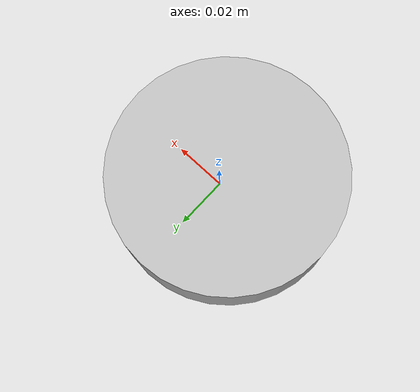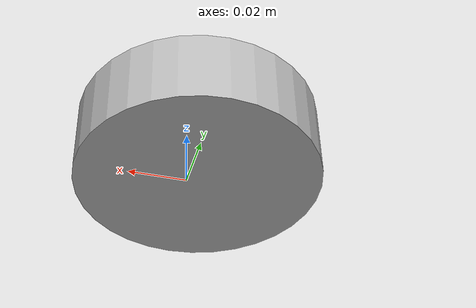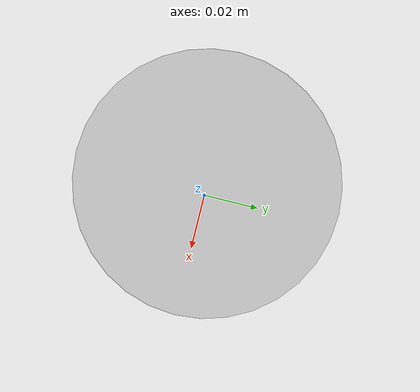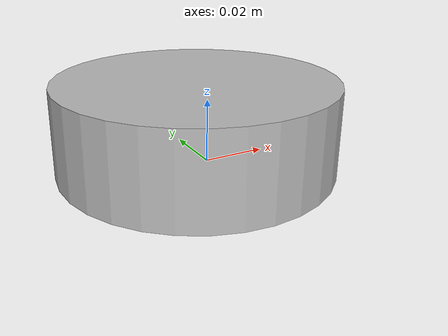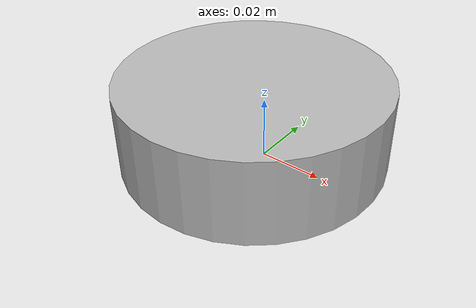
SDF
<?xml version='1.0'?>
<sdf version="1.9">
  <model name="green_can">
    <pose>0 0 0.0135 0 0 0</pose>
    <static>false</static>
    <link name="link">
      <inertial>
        <mass>5.0</mass>
        <inertia> <!-- inertias are tricky to compute -->
          <!-- http://gazebosim.org/tutorials?tut=inertia&cat=build_robot -->
          <ixx>0.1</ixx>       <!-- for a box: ixx = 0.083 * mass * (y*y + z*z) -->
          <ixy>0.0</ixy>         <!-- for a box: ixy = 0 -->
          <ixz>0.0</ixz>         <!-- for a box: ixz = 0 -->
          <iyy>0.1</iyy>       <!-- for a box: iyy = 0.083 * mass * (x*x + z*z) -->
          <iyz>0.0</iyz>         <!-- for a box: iyz = 0 -->
          <izz>0.1</izz>       <!-- for a box: izz = 0.083 * mass * (x*x + y*y) -->
        </inertia>
      </inertial>
      <collision name="collision">
        <geometry>
          <cylinder>
            <radius>0.0425</radius>
            <length>0.027</length>
          </cylinder>
        </geometry>
      </collision>
      <visual name="visual">
        <geometry>
          <mesh>
            <uri>model://green_can/meshes/green_can.dae</uri>
            <scale>1 1 1</scale>
          </mesh>
        </geometry>
      </visual>
    </link>
  </model>
</sdf>
